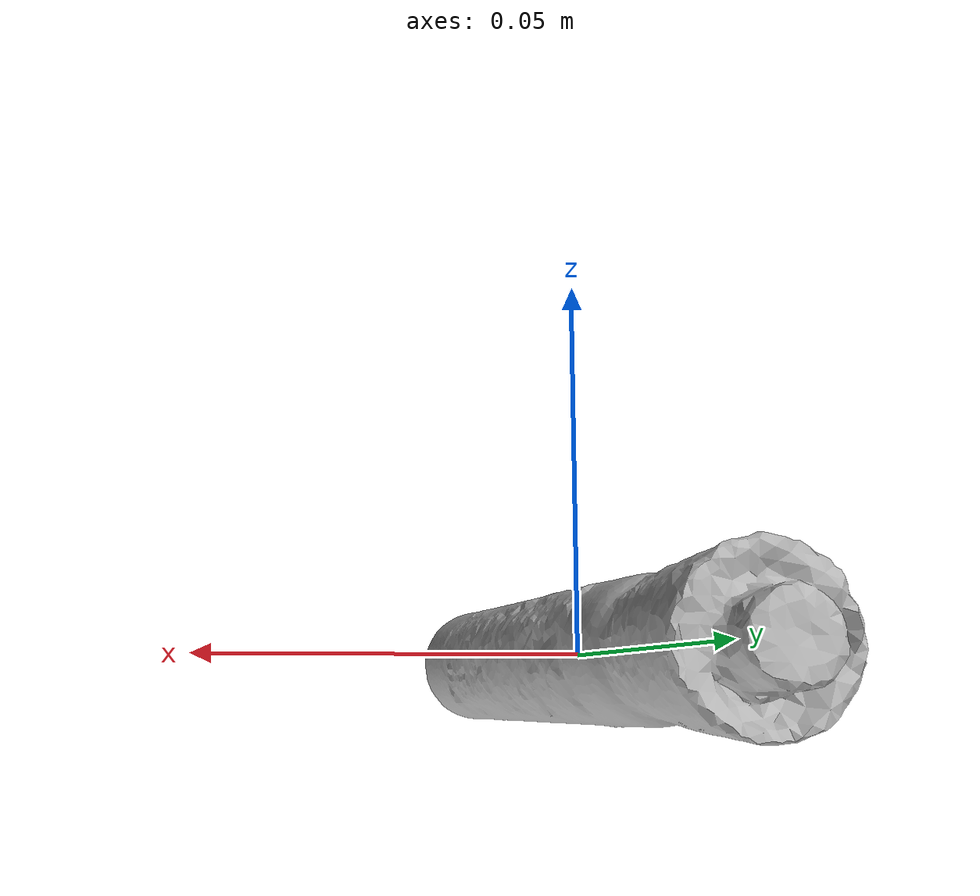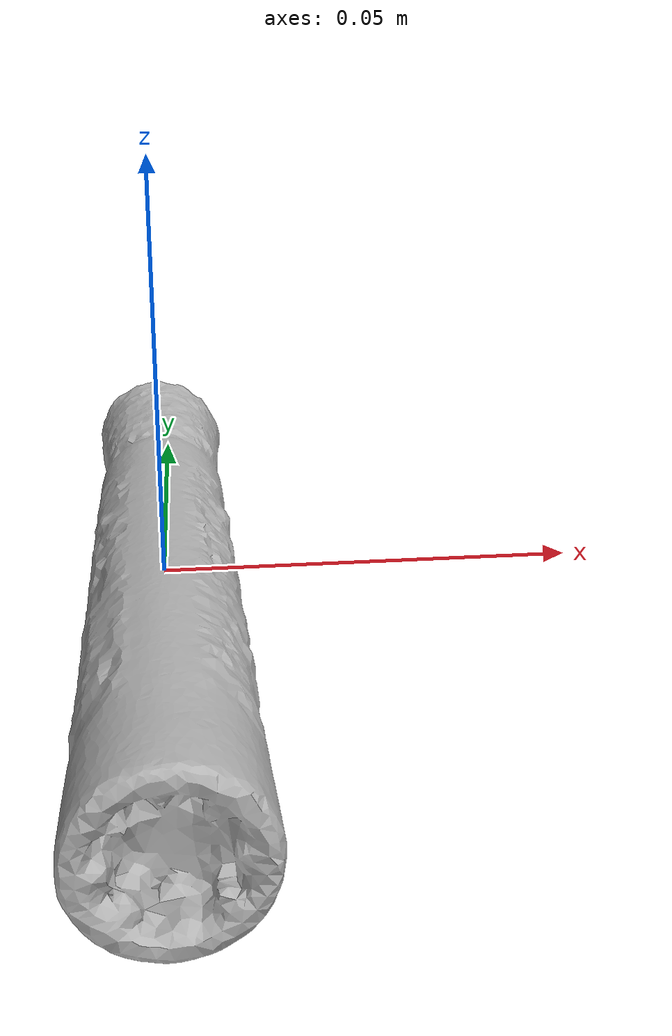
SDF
<?xml version="1.0" ?>
<sdf version="1.7">
<!--
This SDF file was automatically generated using a template modified
and authored by Jinjian Li. The moment of interia is not supposed to be changed.
-->
    <model name="obj_000018">
      <pose>0.0 0.0 0.0 0.0 0.0 0.0</pose>
      <link name="link">
        <inertial>
          <inertia>
           <ixx>4.6368867235754334e-05</ixx>
           <ixy>9.311475343529344e-07</ixy>
           <ixz>-2.4469025266165474e-09</ixz>
           <iyy>1.6097534914785323e-06</iyy>
           <iyz>-2.4552062582204318e-08</iyz>
           <izz>4.6389441367241955e-05</izz>
          </inertia>
          <mass>0.04104506655653375</mass>
        </inertial>
        <collision name="collision">
          <geometry>
            <mesh>
             <uri>obj_000018.obj</uri>
             <scale>1 1 1</scale>
            </mesh>
          </geometry>
        </collision>

        <visual name="visual">
          <geometry>
            <mesh>
             <uri>obj_000018.obj</uri>
             <scale>1 1 1</scale>
            </mesh>
          </geometry>
        </visual>
      </link>
    </model>
</sdf>
